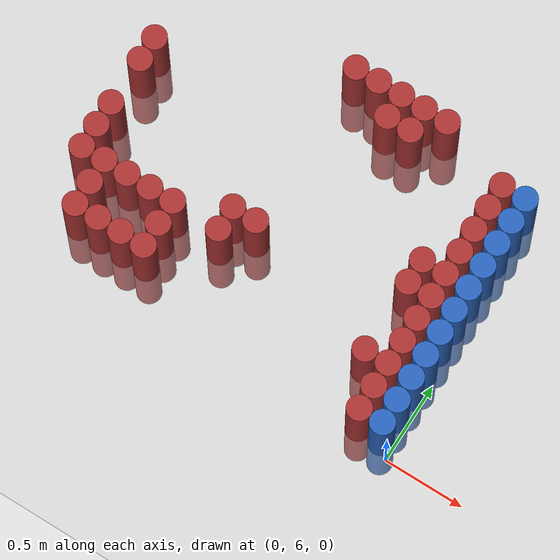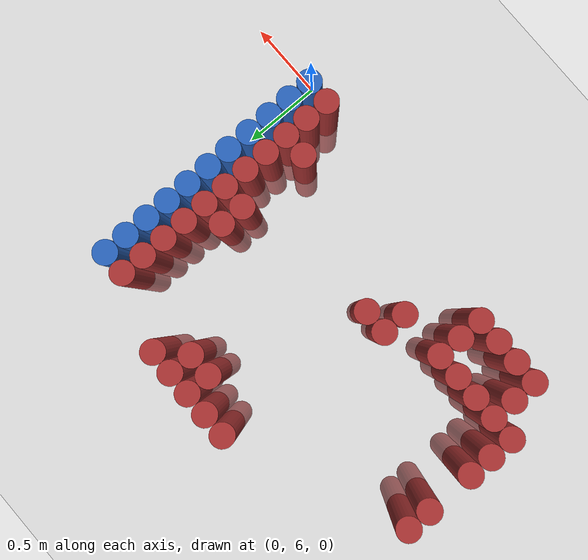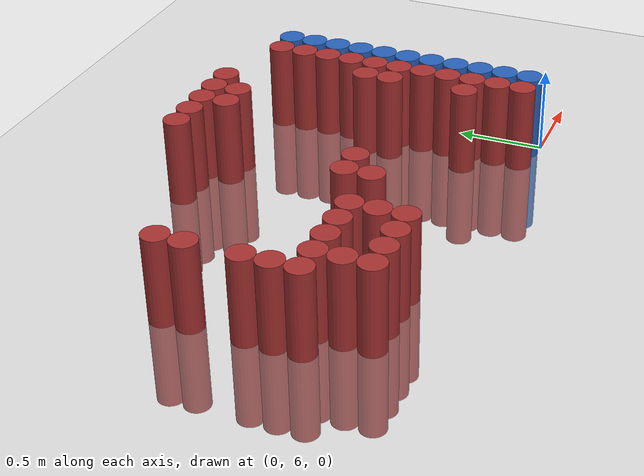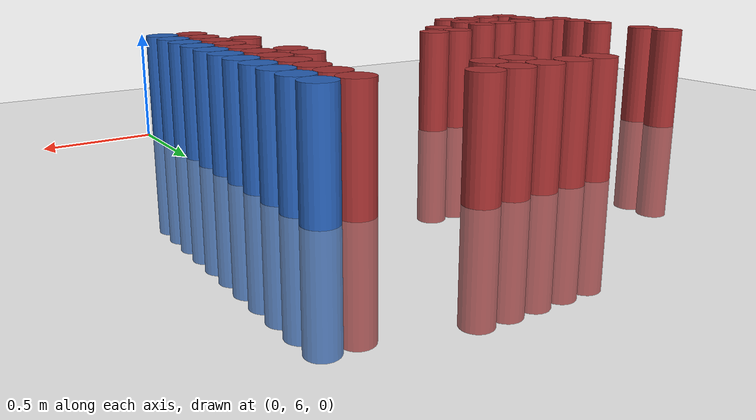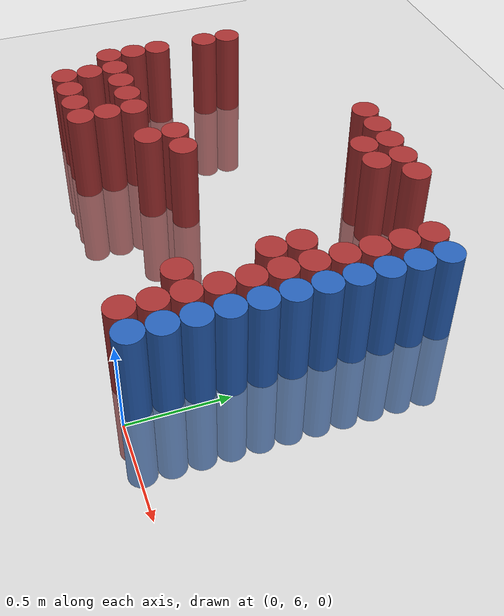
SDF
<sdf version="1.6">
 <world name="default">
  <model name="ground_plane">
   <static>1</static>
   <link name="link">
    <collision name="collision">
     <geometry><plane><normal>0 0 1</normal><size>100 100</size></plane></geometry>
     <surface><friction><ode><mu>100</mu><mu2>50</mu2></ode></friction></surface>
    </collision>
    <visual name="visual">
     <cast_shadows>0</cast_shadows>
     <geometry><plane><normal>0 0 1</normal><size>100 100</size></plane></geometry>
     <material>
      <script><uri>file://media/materials/scripts/gazebo.material</uri><name>Gazebo/Grey</name></script>
     </material>
    </visual>
   </link>
  </model>
  <model name="unit_cylinder_236">
   <static>1</static>
   <pose>-2.325000 6.525000 0.000000 0.000000 0.000000 0.000000</pose>
   <link name="link">
    <inertial>
     <mass>1</mass>
     <inertia><ixx>0.145833</ixx><ixy>0</ixy><ixz>0</ixz><iyy>0.145833</iyy><iyz>0</iyz><izz>0.125</izz></inertia>
    </inertial>
    <collision name="collision">
     <geometry><cylinder><radius>0.075000</radius><length>1</length></cylinder></geometry>
    </collision>
    <visual name="visual">
     <geometry><cylinder><radius>0.075000</radius><length>1</length></cylinder></geometry>
     <material>
      <ambient>0.648000 0.192000 0.192000 1</ambient>
      <diffuse>0.648000 0.192000 0.192000 1</diffuse>
     </material>
     <material>
      <script><name>Gazebo/Grey</name><uri>file://media/materials/scripts/gazebo.material</uri></script>
     </material>
    </visual>
   </link>
  </model>
  <model name="unit_cylinder_237">
   <static>1</static>
   <pose>-2.325000 6.675000 0.000000 0.000000 0.000000 0.000000</pose>
   <link name="link">
    <inertial>
     <mass>1</mass>
     <inertia><ixx>0.145833</ixx><ixy>0</ixy><ixz>0</ixz><iyy>0.145833</iyy><iyz>0</iyz><izz>0.125</izz></inertia>
    </inertial>
    <collision name="collision">
     <geometry><cylinder><radius>0.075000</radius><length>1</length></cylinder></geometry>
    </collision>
    <visual name="visual">
     <geometry><cylinder><radius>0.075000</radius><length>1</length></cylinder></geometry>
     <material>
      <ambient>0.648000 0.192000 0.192000 1</ambient>
      <diffuse>0.648000 0.192000 0.192000 1</diffuse>
     </material>
     <material>
      <script><name>Gazebo/Grey</name><uri>file://media/materials/scripts/gazebo.material</uri></script>
     </material>
    </visual>
   </link>
  </model>
  <model name="unit_cylinder_238">
   <static>1</static>
   <pose>-2.325000 6.825000 0.000000 0.000000 0.000000 0.000000</pose>
   <link name="link">
    <inertial>
     <mass>1</mass>
     <inertia><ixx>0.145833</ixx><ixy>0</ixy><ixz>0</ixz><iyy>0.145833</iyy><iyz>0</iyz><izz>0.125</izz></inertia>
    </inertial>
    <collision name="collision">
     <geometry><cylinder><radius>0.075000</radius><length>1</length></cylinder></geometry>
    </collision>
    <visual name="visual">
     <geometry><cylinder><radius>0.075000</radius><length>1</length></cylinder></geometry>
     <material>
      <ambient>0.648000 0.192000 0.192000 1</ambient>
      <diffuse>0.648000 0.192000 0.192000 1</diffuse>
     </material>
     <material>
      <script><name>Gazebo/Grey</name><uri>file://media/materials/scripts/gazebo.material</uri></script>
     </material>
    </visual>
   </link>
  </model>
  <model name="unit_cylinder_239">
   <static>1</static>
   <pose>-2.325000 7.125000 0.000000 0.000000 0.000000 0.000000</pose>
   <link name="link">
    <inertial>
     <mass>1</mass>
     <inertia><ixx>0.145833</ixx><ixy>0</ixy><ixz>0</ixz><iyy>0.145833</iyy><iyz>0</iyz><izz>0.125</izz></inertia>
    </inertial>
    <collision name="collision">
     <geometry><cylinder><radius>0.075000</radius><length>1</length></cylinder></geometry>
    </collision>
    <visual name="visual">
     <geometry><cylinder><radius>0.075000</radius><length>1</length></cylinder></geometry>
     <material>
      <ambient>0.648000 0.192000 0.192000 1</ambient>
      <diffuse>0.648000 0.192000 0.192000 1</diffuse>
     </material>
     <material>
      <script><name>Gazebo/Grey</name><uri>file://media/materials/scripts/gazebo.material</uri></script>
     </material>
    </visual>
   </link>
  </model>
  <model name="unit_cylinder_240">
   <static>1</static>
   <pose>-2.325000 7.275000 0.000000 0.000000 0.000000 0.000000</pose>
   <link name="link">
    <inertial>
     <mass>1</mass>
     <inertia><ixx>0.145833</ixx><ixy>0</ixy><ixz>0</ixz><iyy>0.145833</iyy><iyz>0</iyz><izz>0.125</izz></inertia>
    </inertial>
    <collision name="collision">
     <geometry><cylinder><radius>0.075000</radius><length>1</length></cylinder></geometry>
    </collision>
    <visual name="visual">
     <geometry><cylinder><radius>0.075000</radius><length>1</length></cylinder></geometry>
     <material>
      <ambient>0.648000 0.192000 0.192000 1</ambient>
      <diffuse>0.648000 0.192000 0.192000 1</diffuse>
     </material>
     <material>
      <script><name>Gazebo/Grey</name><uri>file://media/materials/scripts/gazebo.material</uri></script>
     </material>
    </visual>
   </link>
  </model>
  <model name="unit_cylinder_247">
   <static>1</static>
   <pose>-2.175000 6.225000 0.000000 0.000000 0.000000 0.000000</pose>
   <link name="link">
    <inertial>
     <mass>1</mass>
     <inertia><ixx>0.145833</ixx><ixy>0</ixy><ixz>0</ixz><iyy>0.145833</iyy><iyz>0</iyz><izz>0.125</izz></inertia>
    </inertial>
    <collision name="collision">
     <geometry><cylinder><radius>0.075000</radius><length>1</length></cylinder></geometry>
    </collision>
    <visual name="visual">
     <geometry><cylinder><radius>0.075000</radius><length>1</length></cylinder></geometry>
     <material>
      <ambient>0.648000 0.192000 0.192000 1</ambient>
      <diffuse>0.648000 0.192000 0.192000 1</diffuse>
     </material>
     <material>
      <script><name>Gazebo/Grey</name><uri>file://media/materials/scripts/gazebo.material</uri></script>
     </material>
    </visual>
   </link>
  </model>
  <model name="unit_cylinder_248">
   <static>1</static>
   <pose>-2.175000 6.375000 0.000000 0.000000 0.000000 0.000000</pose>
   <link name="link">
    <inertial>
     <mass>1</mass>
     <inertia><ixx>0.145833</ixx><ixy>0</ixy><ixz>0</ixz><iyy>0.145833</iyy><iyz>0</iyz><izz>0.125</izz></inertia>
    </inertial>
    <collision name="collision">
     <geometry><cylinder><radius>0.075000</radius><length>1</length></cylinder></geometry>
    </collision>
    <visual name="visual">
     <geometry><cylinder><radius>0.075000</radius><length>1</length></cylinder></geometry>
     <material>
      <ambient>0.648000 0.192000 0.192000 1</ambient>
      <diffuse>0.648000 0.192000 0.192000 1</diffuse>
     </material>
     <material>
      <script><name>Gazebo/Grey</name><uri>file://media/materials/scripts/gazebo.material</uri></script>
     </material>
    </visual>
   </link>
  </model>
  <model name="unit_cylinder_249">
   <static>1</static>
   <pose>-2.175000 6.525000 0.000000 0.000000 0.000000 0.000000</pose>
   <link name="link">
    <inertial>
     <mass>1</mass>
     <inertia><ixx>0.145833</ixx><ixy>0</ixy><ixz>0</ixz><iyy>0.145833</iyy><iyz>0</iyz><izz>0.125</izz></inertia>
    </inertial>
    <collision name="collision">
     <geometry><cylinder><radius>0.075000</radius><length>1</length></cylinder></geometry>
    </collision>
    <visual name="visual">
     <geometry><cylinder><radius>0.075000</radius><length>1</length></cylinder></geometry>
     <material>
      <ambient>0.648000 0.192000 0.192000 1</ambient>
      <diffuse>0.648000 0.192000 0.192000 1</diffuse>
     </material>
     <material>
      <script><name>Gazebo/Grey</name><uri>file://media/materials/scripts/gazebo.material</uri></script>
     </material>
    </visual>
   </link>
  </model>
  <model name="unit_cylinder_256">
   <static>1</static>
   <pose>-2.025000 6.225000 0.000000 0.000000 0.000000 0.000000</pose>
   <link name="link">
    <inertial>
     <mass>1</mass>
     <inertia><ixx>0.145833</ixx><ixy>0</ixy><ixz>0</ixz><iyy>0.145833</iyy><iyz>0</iyz><izz>0.125</izz></inertia>
    </inertial>
    <collision name="collision">
     <geometry><cylinder><radius>0.075000</radius><length>1</length></cylinder></geometry>
    </collision>
    <visual name="visual">
     <geometry><cylinder><radius>0.075000</radius><length>1</length></cylinder></geometry>
     <material>
      <ambient>0.648000 0.192000 0.192000 1</ambient>
      <diffuse>0.648000 0.192000 0.192000 1</diffuse>
     </material>
     <material>
      <script><name>Gazebo/Grey</name><uri>file://media/materials/scripts/gazebo.material</uri></script>
     </material>
    </visual>
   </link>
  </model>
  <model name="unit_cylinder_257">
   <static>1</static>
   <pose>-2.025000 6.525000 0.000000 0.000000 0.000000 0.000000</pose>
   <link name="link">
    <inertial>
     <mass>1</mass>
     <inertia><ixx>0.145833</ixx><ixy>0</ixy><ixz>0</ixz><iyy>0.145833</iyy><iyz>0</iyz><izz>0.125</izz></inertia>
    </inertial>
    <collision name="collision">
     <geometry><cylinder><radius>0.075000</radius><length>1</length></cylinder></geometry>
    </collision>
    <visual name="visual">
     <geometry><cylinder><radius>0.075000</radius><length>1</length></cylinder></geometry>
     <material>
      <ambient>0.648000 0.192000 0.192000 1</ambient>
      <diffuse>0.648000 0.192000 0.192000 1</diffuse>
     </material>
     <material>
      <script><name>Gazebo/Grey</name><uri>file://media/materials/scripts/gazebo.material</uri></script>
     </material>
    </visual>
   </link>
  </model>
  <model name="unit_cylinder_258">
   <static>1</static>
   <pose>-1.875000 6.225000 0.000000 0.000000 0.000000 0.000000</pose>
   <link name="link">
    <inertial>
     <mass>1</mass>
     <inertia><ixx>0.145833</ixx><ixy>0</ixy><ixz>0</ixz><iyy>0.145833</iyy><iyz>0</iyz><izz>0.125</izz></inertia>
    </inertial>
    <collision name="collision">
     <geometry><cylinder><radius>0.075000</radius><length>1</length></cylinder></geometry>
    </collision>
    <visual name="visual">
     <geometry><cylinder><radius>0.075000</radius><length>1</length></cylinder></geometry>
     <material>
      <ambient>0.648000 0.192000 0.192000 1</ambient>
      <diffuse>0.648000 0.192000 0.192000 1</diffuse>
     </material>
     <material>
      <script><name>Gazebo/Grey</name><uri>file://media/materials/scripts/gazebo.material</uri></script>
     </material>
    </visual>
   </link>
  </model>
  <model name="unit_cylinder_259">
   <static>1</static>
   <pose>-1.875000 6.525000 0.000000 0.000000 0.000000 0.000000</pose>
   <link name="link">
    <inertial>
     <mass>1</mass>
     <inertia><ixx>0.145833</ixx><ixy>0</ixy><ixz>0</ixz><iyy>0.145833</iyy><iyz>0</iyz><izz>0.125</izz></inertia>
    </inertial>
    <collision name="collision">
     <geometry><cylinder><radius>0.075000</radius><length>1</length></cylinder></geometry>
    </collision>
    <visual name="visual">
     <geometry><cylinder><radius>0.075000</radius><length>1</length></cylinder></geometry>
     <material>
      <ambient>0.648000 0.192000 0.192000 1</ambient>
      <diffuse>0.648000 0.192000 0.192000 1</diffuse>
     </material>
     <material>
      <script><name>Gazebo/Grey</name><uri>file://media/materials/scripts/gazebo.material</uri></script>
     </material>
    </visual>
   </link>
  </model>
  <model name="unit_cylinder_260">
   <static>1</static>
   <pose>-1.725000 6.225000 0.000000 0.000000 0.000000 0.000000</pose>
   <link name="link">
    <inertial>
     <mass>1</mass>
     <inertia><ixx>0.145833</ixx><ixy>0</ixy><ixz>0</ixz><iyy>0.145833</iyy><iyz>0</iyz><izz>0.125</izz></inertia>
    </inertial>
    <collision name="collision">
     <geometry><cylinder><radius>0.075000</radius><length>1</length></cylinder></geometry>
    </collision>
    <visual name="visual">
     <geometry><cylinder><radius>0.075000</radius><length>1</length></cylinder></geometry>
     <material>
      <ambient>0.648000 0.192000 0.192000 1</ambient>
      <diffuse>0.648000 0.192000 0.192000 1</diffuse>
     </material>
     <material>
      <script><name>Gazebo/Grey</name><uri>file://media/materials/scripts/gazebo.material</uri></script>
     </material>
    </visual>
   </link>
  </model>
  <model name="unit_cylinder_261">
   <static>1</static>
   <pose>-1.725000 6.375000 0.000000 0.000000 0.000000 0.000000</pose>
   <link name="link">
    <inertial>
     <mass>1</mass>
     <inertia><ixx>0.145833</ixx><ixy>0</ixy><ixz>0</ixz><iyy>0.145833</iyy><iyz>0</iyz><izz>0.125</izz></inertia>
    </inertial>
    <collision name="collision">
     <geometry><cylinder><radius>0.075000</radius><length>1</length></cylinder></geometry>
    </collision>
    <visual name="visual">
     <geometry><cylinder><radius>0.075000</radius><length>1</length></cylinder></geometry>
     <material>
      <ambient>0.648000 0.192000 0.192000 1</ambient>
      <diffuse>0.648000 0.192000 0.192000 1</diffuse>
     </material>
     <material>
      <script><name>Gazebo/Grey</name><uri>file://media/materials/scripts/gazebo.material</uri></script>
     </material>
    </visual>
   </link>
  </model>
  <model name="unit_cylinder_262">
   <static>1</static>
   <pose>-1.725000 6.525000 0.000000 0.000000 0.000000 0.000000</pose>
   <link name="link">
    <inertial>
     <mass>1</mass>
     <inertia><ixx>0.145833</ixx><ixy>0</ixy><ixz>0</ixz><iyy>0.145833</iyy><iyz>0</iyz><izz>0.125</izz></inertia>
    </inertial>
    <collision name="collision">
     <geometry><cylinder><radius>0.075000</radius><length>1</length></cylinder></geometry>
    </collision>
    <visual name="visual">
     <geometry><cylinder><radius>0.075000</radius><length>1</length></cylinder></geometry>
     <material>
      <ambient>0.648000 0.192000 0.192000 1</ambient>
      <diffuse>0.648000 0.192000 0.192000 1</diffuse>
     </material>
     <material>
      <script><name>Gazebo/Grey</name><uri>file://media/materials/scripts/gazebo.material</uri></script>
     </material>
    </visual>
   </link>
  </model>
  <model name="unit_cylinder_263">
   <static>1</static>
   <pose>-1.425000 6.525000 0.000000 0.000000 0.000000 0.000000</pose>
   <link name="link">
    <inertial>
     <mass>1</mass>
     <inertia><ixx>0.145833</ixx><ixy>0</ixy><ixz>0</ixz><iyy>0.145833</iyy><iyz>0</iyz><izz>0.125</izz></inertia>
    </inertial>
    <collision name="collision">
     <geometry><cylinder><radius>0.075000</radius><length>1</length></cylinder></geometry>
    </collision>
    <visual name="visual">
     <geometry><cylinder><radius>0.075000</radius><length>1</length></cylinder></geometry>
     <material>
      <ambient>0.648000 0.192000 0.192000 1</ambient>
      <diffuse>0.648000 0.192000 0.192000 1</diffuse>
     </material>
     <material>
      <script><name>Gazebo/Grey</name><uri>file://media/materials/scripts/gazebo.material</uri></script>
     </material>
    </visual>
   </link>
  </model>
  <model name="unit_cylinder_264">
   <static>1</static>
   <pose>-1.425000 6.675000 0.000000 0.000000 0.000000 0.000000</pose>
   <link name="link">
    <inertial>
     <mass>1</mass>
     <inertia><ixx>0.145833</ixx><ixy>0</ixy><ixz>0</ixz><iyy>0.145833</iyy><iyz>0</iyz><izz>0.125</izz></inertia>
    </inertial>
    <collision name="collision">
     <geometry><cylinder><radius>0.075000</radius><length>1</length></cylinder></geometry>
    </collision>
    <visual name="visual">
     <geometry><cylinder><radius>0.075000</radius><length>1</length></cylinder></geometry>
     <material>
      <ambient>0.648000 0.192000 0.192000 1</ambient>
      <diffuse>0.648000 0.192000 0.192000 1</diffuse>
     </material>
     <material>
      <script><name>Gazebo/Grey</name><uri>file://media/materials/scripts/gazebo.material</uri></script>
     </material>
    </visual>
   </link>
  </model>
  <model name="unit_cylinder_265">
   <static>1</static>
   <pose>-1.275000 6.675000 0.000000 0.000000 0.000000 0.000000</pose>
   <link name="link">
    <inertial>
     <mass>1</mass>
     <inertia><ixx>0.145833</ixx><ixy>0</ixy><ixz>0</ixz><iyy>0.145833</iyy><iyz>0</iyz><izz>0.125</izz></inertia>
    </inertial>
    <collision name="collision">
     <geometry><cylinder><radius>0.075000</radius><length>1</length></cylinder></geometry>
    </collision>
    <visual name="visual">
     <geometry><cylinder><radius>0.075000</radius><length>1</length></cylinder></geometry>
     <material>
      <ambient>0.648000 0.192000 0.192000 1</ambient>
      <diffuse>0.648000 0.192000 0.192000 1</diffuse>
     </material>
     <material>
      <script><name>Gazebo/Grey</name><uri>file://media/materials/scripts/gazebo.material</uri></script>
     </material>
    </visual>
   </link>
  </model>
  <model name="unit_cylinder_266">
   <static>1</static>
   <pose>-1.275000 7.725000 0.000000 0.000000 0.000000 0.000000</pose>
   <link name="link">
    <inertial>
     <mass>1</mass>
     <inertia><ixx>0.145833</ixx><ixy>0</ixy><ixz>0</ixz><iyy>0.145833</iyy><iyz>0</iyz><izz>0.125</izz></inertia>
    </inertial>
    <collision name="collision">
     <geometry><cylinder><radius>0.075000</radius><length>1</length></cylinder></geometry>
    </collision>
    <visual name="visual">
     <geometry><cylinder><radius>0.075000</radius><length>1</length></cylinder></geometry>
     <material>
      <ambient>0.648000 0.192000 0.192000 1</ambient>
      <diffuse>0.648000 0.192000 0.192000 1</diffuse>
     </material>
     <material>
      <script><name>Gazebo/Grey</name><uri>file://media/materials/scripts/gazebo.material</uri></script>
     </material>
    </visual>
   </link>
  </model>
  <model name="unit_cylinder_270">
   <static>1</static>
   <pose>-1.125000 7.725000 0.000000 0.000000 0.000000 0.000000</pose>
   <link name="link">
    <inertial>
     <mass>1</mass>
     <inertia><ixx>0.145833</ixx><ixy>0</ixy><ixz>0</ixz><iyy>0.145833</iyy><iyz>0</iyz><izz>0.125</izz></inertia>
    </inertial>
    <collision name="collision">
     <geometry><cylinder><radius>0.075000</radius><length>1</length></cylinder></geometry>
    </collision>
    <visual name="visual">
     <geometry><cylinder><radius>0.075000</radius><length>1</length></cylinder></geometry>
     <material>
      <ambient>0.648000 0.192000 0.192000 1</ambient>
      <diffuse>0.648000 0.192000 0.192000 1</diffuse>
     </material>
     <material>
      <script><name>Gazebo/Grey</name><uri>file://media/materials/scripts/gazebo.material</uri></script>
     </material>
    </visual>
   </link>
  </model>
  <model name="unit_cylinder_272">
   <static>1</static>
   <pose>-0.975000 7.575000 0.000000 0.000000 0.000000 0.000000</pose>
   <link name="link">
    <inertial>
     <mass>1</mass>
     <inertia><ixx>0.145833</ixx><ixy>0</ixy><ixz>0</ixz><iyy>0.145833</iyy><iyz>0</iyz><izz>0.125</izz></inertia>
    </inertial>
    <collision name="collision">
     <geometry><cylinder><radius>0.075000</radius><length>1</length></cylinder></geometry>
    </collision>
    <visual name="visual">
     <geometry><cylinder><radius>0.075000</radius><length>1</length></cylinder></geometry>
     <material>
      <ambient>0.648000 0.192000 0.192000 1</ambient>
      <diffuse>0.648000 0.192000 0.192000 1</diffuse>
     </material>
     <material>
      <script><name>Gazebo/Grey</name><uri>file://media/materials/scripts/gazebo.material</uri></script>
     </material>
    </visual>
   </link>
  </model>
  <model name="unit_cylinder_273">
   <static>1</static>
   <pose>-0.975000 7.725000 0.000000 0.000000 0.000000 0.000000</pose>
   <link name="link">
    <inertial>
     <mass>1</mass>
     <inertia><ixx>0.145833</ixx><ixy>0</ixy><ixz>0</ixz><iyy>0.145833</iyy><iyz>0</iyz><izz>0.125</izz></inertia>
    </inertial>
    <collision name="collision">
     <geometry><cylinder><radius>0.075000</radius><length>1</length></cylinder></geometry>
    </collision>
    <visual name="visual">
     <geometry><cylinder><radius>0.075000</radius><length>1</length></cylinder></geometry>
     <material>
      <ambient>0.648000 0.192000 0.192000 1</ambient>
      <diffuse>0.648000 0.192000 0.192000 1</diffuse>
     </material>
     <material>
      <script><name>Gazebo/Grey</name><uri>file://media/materials/scripts/gazebo.material</uri></script>
     </material>
    </visual>
   </link>
  </model>
  <model name="unit_cylinder_275">
   <static>1</static>
   <pose>-0.825000 7.575000 0.000000 0.000000 0.000000 0.000000</pose>
   <link name="link">
    <inertial>
     <mass>1</mass>
     <inertia><ixx>0.145833</ixx><ixy>0</ixy><ixz>0</ixz><iyy>0.145833</iyy><iyz>0</iyz><izz>0.125</izz></inertia>
    </inertial>
    <collision name="collision">
     <geometry><cylinder><radius>0.075000</radius><length>1</length></cylinder></geometry>
    </collision>
    <visual name="visual">
     <geometry><cylinder><radius>0.075000</radius><length>1</length></cylinder></geometry>
     <material>
      <ambient>0.648000 0.192000 0.192000 1</ambient>
      <diffuse>0.648000 0.192000 0.192000 1</diffuse>
     </material>
     <material>
      <script><name>Gazebo/Grey</name><uri>file://media/materials/scripts/gazebo.material</uri></script>
     </material>
    </visual>
   </link>
  </model>
  <model name="unit_cylinder_276">
   <static>1</static>
   <pose>-0.825000 7.725000 0.000000 0.000000 0.000000 0.000000</pose>
   <link name="link">
    <inertial>
     <mass>1</mass>
     <inertia><ixx>0.145833</ixx><ixy>0</ixy><ixz>0</ixz><iyy>0.145833</iyy><iyz>0</iyz><izz>0.125</izz></inertia>
    </inertial>
    <collision name="collision">
     <geometry><cylinder><radius>0.075000</radius><length>1</length></cylinder></geometry>
    </collision>
    <visual name="visual">
     <geometry><cylinder><radius>0.075000</radius><length>1</length></cylinder></geometry>
     <material>
      <ambient>0.648000 0.192000 0.192000 1</ambient>
      <diffuse>0.648000 0.192000 0.192000 1</diffuse>
     </material>
     <material>
      <script><name>Gazebo/Grey</name><uri>file://media/materials/scripts/gazebo.material</uri></script>
     </material>
    </visual>
   </link>
  </model>
  <model name="unit_cylinder_279">
   <static>1</static>
   <pose>-0.675000 7.725000 0.000000 0.000000 0.000000 0.000000</pose>
   <link name="link">
    <inertial>
     <mass>1</mass>
     <inertia><ixx>0.145833</ixx><ixy>0</ixy><ixz>0</ixz><iyy>0.145833</iyy><iyz>0</iyz><izz>0.125</izz></inertia>
    </inertial>
    <collision name="collision">
     <geometry><cylinder><radius>0.075000</radius><length>1</length></cylinder></geometry>
    </collision>
    <visual name="visual">
     <geometry><cylinder><radius>0.075000</radius><length>1</length></cylinder></geometry>
     <material>
      <ambient>0.648000 0.192000 0.192000 1</ambient>
      <diffuse>0.648000 0.192000 0.192000 1</diffuse>
     </material>
     <material>
      <script><name>Gazebo/Grey</name><uri>file://media/materials/scripts/gazebo.material</uri></script>
     </material>
    </visual>
   </link>
  </model>
  <model name="unit_cylinder_286">
   <static>1</static>
   <pose>-0.375000 6.375000 0.000000 0.000000 0.000000 0.000000</pose>
   <link name="link">
    <inertial>
     <mass>1</mass>
     <inertia><ixx>0.145833</ixx><ixy>0</ixy><ixz>0</ixz><iyy>0.145833</iyy><iyz>0</iyz><izz>0.125</izz></inertia>
    </inertial>
    <collision name="collision">
     <geometry><cylinder><radius>0.075000</radius><length>1</length></cylinder></geometry>
    </collision>
    <visual name="visual">
     <geometry><cylinder><radius>0.075000</radius><length>1</length></cylinder></geometry>
     <material>
      <ambient>0.648000 0.192000 0.192000 1</ambient>
      <diffuse>0.648000 0.192000 0.192000 1</diffuse>
     </material>
     <material>
      <script><name>Gazebo/Grey</name><uri>file://media/materials/scripts/gazebo.material</uri></script>
     </material>
    </visual>
   </link>
  </model>
  <model name="unit_cylinder_287">
   <static>1</static>
   <pose>-0.375000 6.825000 0.000000 0.000000 0.000000 0.000000</pose>
   <link name="link">
    <inertial>
     <mass>1</mass>
     <inertia><ixx>0.145833</ixx><ixy>0</ixy><ixz>0</ixz><iyy>0.145833</iyy><iyz>0</iyz><izz>0.125</izz></inertia>
    </inertial>
    <collision name="collision">
     <geometry><cylinder><radius>0.075000</radius><length>1</length></cylinder></geometry>
    </collision>
    <visual name="visual">
     <geometry><cylinder><radius>0.075000</radius><length>1</length></cylinder></geometry>
     <material>
      <ambient>0.648000 0.192000 0.192000 1</ambient>
      <diffuse>0.648000 0.192000 0.192000 1</diffuse>
     </material>
     <material>
      <script><name>Gazebo/Grey</name><uri>file://media/materials/scripts/gazebo.material</uri></script>
     </material>
    </visual>
   </link>
  </model>
  <model name="unit_cylinder_288">
   <static>1</static>
   <pose>-0.375000 6.975000 0.000000 0.000000 0.000000 0.000000</pose>
   <link name="link">
    <inertial>
     <mass>1</mass>
     <inertia><ixx>0.145833</ixx><ixy>0</ixy><ixz>0</ixz><iyy>0.145833</iyy><iyz>0</iyz><izz>0.125</izz></inertia>
    </inertial>
    <collision name="collision">
     <geometry><cylinder><radius>0.075000</radius><length>1</length></cylinder></geometry>
    </collision>
    <visual name="visual">
     <geometry><cylinder><radius>0.075000</radius><length>1</length></cylinder></geometry>
     <material>
      <ambient>0.648000 0.192000 0.192000 1</ambient>
      <diffuse>0.648000 0.192000 0.192000 1</diffuse>
     </material>
     <material>
      <script><name>Gazebo/Grey</name><uri>file://media/materials/scripts/gazebo.material</uri></script>
     </material>
    </visual>
   </link>
  </model>
  <model name="unit_cylinder_298">
   <static>1</static>
   <pose>-0.225000 6.075000 0.000000 0.000000 0.000000 0.000000</pose>
   <link name="link">
    <inertial>
     <mass>1</mass>
     <inertia><ixx>0.145833</ixx><ixy>0</ixy><ixz>0</ixz><iyy>0.145833</iyy><iyz>0</iyz><izz>0.125</izz></inertia>
    </inertial>
    <collision name="collision">
     <geometry><cylinder><radius>0.075000</radius><length>1</length></cylinder></geometry>
    </collision>
    <visual name="visual">
     <geometry><cylinder><radius>0.075000</radius><length>1</length></cylinder></geometry>
     <material>
      <ambient>0.648000 0.192000 0.192000 1</ambient>
      <diffuse>0.648000 0.192000 0.192000 1</diffuse>
     </material>
     <material>
      <script><name>Gazebo/Grey</name><uri>file://media/materials/scripts/gazebo.material</uri></script>
     </material>
    </visual>
   </link>
  </model>
  <model name="unit_cylinder_299">
   <static>1</static>
   <pose>-0.225000 6.225000 0.000000 0.000000 0.000000 0.000000</pose>
   <link name="link">
    <inertial>
     <mass>1</mass>
     <inertia><ixx>0.145833</ixx><ixy>0</ixy><ixz>0</ixz><iyy>0.145833</iyy><iyz>0</iyz><izz>0.125</izz></inertia>
    </inertial>
    <collision name="collision">
     <geometry><cylinder><radius>0.075000</radius><length>1</length></cylinder></geometry>
    </collision>
    <visual name="visual">
     <geometry><cylinder><radius>0.075000</radius><length>1</length></cylinder></geometry>
     <material>
      <ambient>0.648000 0.192000 0.192000 1</ambient>
      <diffuse>0.648000 0.192000 0.192000 1</diffuse>
     </material>
     <material>
      <script><name>Gazebo/Grey</name><uri>file://media/materials/scripts/gazebo.material</uri></script>
     </material>
    </visual>
   </link>
  </model>
  <model name="unit_cylinder_300">
   <static>1</static>
   <pose>-0.225000 6.375000 0.000000 0.000000 0.000000 0.000000</pose>
   <link name="link">
    <inertial>
     <mass>1</mass>
     <inertia><ixx>0.145833</ixx><ixy>0</ixy><ixz>0</ixz><iyy>0.145833</iyy><iyz>0</iyz><izz>0.125</izz></inertia>
    </inertial>
    <collision name="collision">
     <geometry><cylinder><radius>0.075000</radius><length>1</length></cylinder></geometry>
    </collision>
    <visual name="visual">
     <geometry><cylinder><radius>0.075000</radius><length>1</length></cylinder></geometry>
     <material>
      <ambient>0.648000 0.192000 0.192000 1</ambient>
      <diffuse>0.648000 0.192000 0.192000 1</diffuse>
     </material>
     <material>
      <script><name>Gazebo/Grey</name><uri>file://media/materials/scripts/gazebo.material</uri></script>
     </material>
    </visual>
   </link>
  </model>
  <model name="unit_cylinder_301">
   <static>1</static>
   <pose>-0.225000 6.525000 0.000000 0.000000 0.000000 0.000000</pose>
   <link name="link">
    <inertial>
     <mass>1</mass>
     <inertia><ixx>0.145833</ixx><ixy>0</ixy><ixz>0</ixz><iyy>0.145833</iyy><iyz>0</iyz><izz>0.125</izz></inertia>
    </inertial>
    <collision name="collision">
     <geometry><cylinder><radius>0.075000</radius><length>1</length></cylinder></geometry>
    </collision>
    <visual name="visual">
     <geometry><cylinder><radius>0.075000</radius><length>1</length></cylinder></geometry>
     <material>
      <ambient>0.648000 0.192000 0.192000 1</ambient>
      <diffuse>0.648000 0.192000 0.192000 1</diffuse>
     </material>
     <material>
      <script><name>Gazebo/Grey</name><uri>file://media/materials/scripts/gazebo.material</uri></script>
     </material>
    </visual>
   </link>
  </model>
  <model name="unit_cylinder_302">
   <static>1</static>
   <pose>-0.225000 6.675000 0.000000 0.000000 0.000000 0.000000</pose>
   <link name="link">
    <inertial>
     <mass>1</mass>
     <inertia><ixx>0.145833</ixx><ixy>0</ixy><ixz>0</ixz><iyy>0.145833</iyy><iyz>0</iyz><izz>0.125</izz></inertia>
    </inertial>
    <collision name="collision">
     <geometry><cylinder><radius>0.075000</radius><length>1</length></cylinder></geometry>
    </collision>
    <visual name="visual">
     <geometry><cylinder><radius>0.075000</radius><length>1</length></cylinder></geometry>
     <material>
      <ambient>0.648000 0.192000 0.192000 1</ambient>
      <diffuse>0.648000 0.192000 0.192000 1</diffuse>
     </material>
     <material>
      <script><name>Gazebo/Grey</name><uri>file://media/materials/scripts/gazebo.material</uri></script>
     </material>
    </visual>
   </link>
  </model>
  <model name="unit_cylinder_303">
   <static>1</static>
   <pose>-0.225000 6.825000 0.000000 0.000000 0.000000 0.000000</pose>
   <link name="link">
    <inertial>
     <mass>1</mass>
     <inertia><ixx>0.145833</ixx><ixy>0</ixy><ixz>0</ixz><iyy>0.145833</iyy><iyz>0</iyz><izz>0.125</izz></inertia>
    </inertial>
    <collision name="collision">
     <geometry><cylinder><radius>0.075000</radius><length>1</length></cylinder></geometry>
    </collision>
    <visual name="visual">
     <geometry><cylinder><radius>0.075000</radius><length>1</length></cylinder></geometry>
     <material>
      <ambient>0.648000 0.192000 0.192000 1</ambient>
      <diffuse>0.648000 0.192000 0.192000 1</diffuse>
     </material>
     <material>
      <script><name>Gazebo/Grey</name><uri>file://media/materials/scripts/gazebo.material</uri></script>
     </material>
    </visual>
   </link>
  </model>
  <model name="unit_cylinder_304">
   <static>1</static>
   <pose>-0.225000 6.975000 0.000000 0.000000 0.000000 0.000000</pose>
   <link name="link">
    <inertial>
     <mass>1</mass>
     <inertia><ixx>0.145833</ixx><ixy>0</ixy><ixz>0</ixz><iyy>0.145833</iyy><iyz>0</iyz><izz>0.125</izz></inertia>
    </inertial>
    <collision name="collision">
     <geometry><cylinder><radius>0.075000</radius><length>1</length></cylinder></geometry>
    </collision>
    <visual name="visual">
     <geometry><cylinder><radius>0.075000</radius><length>1</length></cylinder></geometry>
     <material>
      <ambient>0.648000 0.192000 0.192000 1</ambient>
      <diffuse>0.648000 0.192000 0.192000 1</diffuse>
     </material>
     <material>
      <script><name>Gazebo/Grey</name><uri>file://media/materials/scripts/gazebo.material</uri></script>
     </material>
    </visual>
   </link>
  </model>
  <model name="unit_cylinder_305">
   <static>1</static>
   <pose>-0.225000 7.125000 0.000000 0.000000 0.000000 0.000000</pose>
   <link name="link">
    <inertial>
     <mass>1</mass>
     <inertia><ixx>0.145833</ixx><ixy>0</ixy><ixz>0</ixz><iyy>0.145833</iyy><iyz>0</iyz><izz>0.125</izz></inertia>
    </inertial>
    <collision name="collision">
     <geometry><cylinder><radius>0.075000</radius><length>1</length></cylinder></geometry>
    </collision>
    <visual name="visual">
     <geometry><cylinder><radius>0.075000</radius><length>1</length></cylinder></geometry>
     <material>
      <ambient>0.648000 0.192000 0.192000 1</ambient>
      <diffuse>0.648000 0.192000 0.192000 1</diffuse>
     </material>
     <material>
      <script><name>Gazebo/Grey</name><uri>file://media/materials/scripts/gazebo.material</uri></script>
     </material>
    </visual>
   </link>
  </model>
  <model name="unit_cylinder_306">
   <static>1</static>
   <pose>-0.225000 7.275000 0.000000 0.000000 0.000000 0.000000</pose>
   <link name="link">
    <inertial>
     <mass>1</mass>
     <inertia><ixx>0.145833</ixx><ixy>0</ixy><ixz>0</ixz><iyy>0.145833</iyy><iyz>0</iyz><izz>0.125</izz></inertia>
    </inertial>
    <collision name="collision">
     <geometry><cylinder><radius>0.075000</radius><length>1</length></cylinder></geometry>
    </collision>
    <visual name="visual">
     <geometry><cylinder><radius>0.075000</radius><length>1</length></cylinder></geometry>
     <material>
      <ambient>0.648000 0.192000 0.192000 1</ambient>
      <diffuse>0.648000 0.192000 0.192000 1</diffuse>
     </material>
     <material>
      <script><name>Gazebo/Grey</name><uri>file://media/materials/scripts/gazebo.material</uri></script>
     </material>
    </visual>
   </link>
  </model>
  <model name="unit_cylinder_307">
   <static>1</static>
   <pose>-0.225000 7.425000 0.000000 0.000000 0.000000 0.000000</pose>
   <link name="link">
    <inertial>
     <mass>1</mass>
     <inertia><ixx>0.145833</ixx><ixy>0</ixy><ixz>0</ixz><iyy>0.145833</iyy><iyz>0</iyz><izz>0.125</izz></inertia>
    </inertial>
    <collision name="collision">
     <geometry><cylinder><radius>0.075000</radius><length>1</length></cylinder></geometry>
    </collision>
    <visual name="visual">
     <geometry><cylinder><radius>0.075000</radius><length>1</length></cylinder></geometry>
     <material>
      <ambient>0.648000 0.192000 0.192000 1</ambient>
      <diffuse>0.648000 0.192000 0.192000 1</diffuse>
     </material>
     <material>
      <script><name>Gazebo/Grey</name><uri>file://media/materials/scripts/gazebo.material</uri></script>
     </material>
    </visual>
   </link>
  </model>
  <model name="unit_cylinder_308">
   <static>1</static>
   <pose>-0.225000 7.575000 0.000000 0.000000 0.000000 0.000000</pose>
   <link name="link">
    <inertial>
     <mass>1</mass>
     <inertia><ixx>0.145833</ixx><ixy>0</ixy><ixz>0</ixz><iyy>0.145833</iyy><iyz>0</iyz><izz>0.125</izz></inertia>
    </inertial>
    <collision name="collision">
     <geometry><cylinder><radius>0.075000</radius><length>1</length></cylinder></geometry>
    </collision>
    <visual name="visual">
     <geometry><cylinder><radius>0.075000</radius><length>1</length></cylinder></geometry>
     <material>
      <ambient>0.648000 0.192000 0.192000 1</ambient>
      <diffuse>0.648000 0.192000 0.192000 1</diffuse>
     </material>
     <material>
      <script><name>Gazebo/Grey</name><uri>file://media/materials/scripts/gazebo.material</uri></script>
     </material>
    </visual>
   </link>
  </model>
  <model name="unit_cylinder_326">
   <static>1</static>
   <pose>-0.075000 6.075000 0.000000 0.000000 0.000000 0.000000</pose>
   <link name="link">
    <inertial>
     <mass>1</mass>
     <inertia><ixx>0.145833</ixx><ixy>0</ixy><ixz>0</ixz><iyy>0.145833</iyy><iyz>0</iyz><izz>0.125</izz></inertia>
    </inertial>
    <collision name="collision">
     <geometry><cylinder><radius>0.075000</radius><length>1</length></cylinder></geometry>
    </collision>
    <visual name="visual">
     <geometry><cylinder><radius>0.075000</radius><length>1</length></cylinder></geometry>
     <material>
      <ambient>0.152000 0.379000 0.720000 1</ambient>
      <diffuse>0.152000 0.379000 0.720000 1</diffuse>
     </material>
     <material>
      <script><name>Gazebo/Grey</name><uri>file://media/materials/scripts/gazebo.material</uri></script>
     </material>
    </visual>
   </link>
  </model>
  <model name="unit_cylinder_327">
   <static>1</static>
   <pose>-0.075000 6.225000 0.000000 0.000000 0.000000 0.000000</pose>
   <link name="link">
    <inertial>
     <mass>1</mass>
     <inertia><ixx>0.145833</ixx><ixy>0</ixy><ixz>0</ixz><iyy>0.145833</iyy><iyz>0</iyz><izz>0.125</izz></inertia>
    </inertial>
    <collision name="collision">
     <geometry><cylinder><radius>0.075000</radius><length>1</length></cylinder></geometry>
    </collision>
    <visual name="visual">
     <geometry><cylinder><radius>0.075000</radius><length>1</length></cylinder></geometry>
     <material>
      <ambient>0.152000 0.379000 0.720000 1</ambient>
      <diffuse>0.152000 0.379000 0.720000 1</diffuse>
     </material>
     <material>
      <script><name>Gazebo/Grey</name><uri>file://media/materials/scripts/gazebo.material</uri></script>
     </material>
    </visual>
   </link>
  </model>
  <model name="unit_cylinder_328">
   <static>1</static>
   <pose>-0.075000 6.375000 0.000000 0.000000 0.000000 0.000000</pose>
   <link name="link">
    <inertial>
     <mass>1</mass>
     <inertia><ixx>0.145833</ixx><ixy>0</ixy><ixz>0</ixz><iyy>0.145833</iyy><iyz>0</iyz><izz>0.125</izz></inertia>
    </inertial>
    <collision name="collision">
     <geometry><cylinder><radius>0.075000</radius><length>1</length></cylinder></geometry>
    </collision>
    <visual name="visual">
     <geometry><cylinder><radius>0.075000</radius><length>1</length></cylinder></geometry>
     <material>
      <ambient>0.152000 0.379000 0.720000 1</ambient>
      <diffuse>0.152000 0.379000 0.720000 1</diffuse>
     </material>
     <material>
      <script><name>Gazebo/Grey</name><uri>file://media/materials/scripts/gazebo.material</uri></script>
     </material>
    </visual>
   </link>
  </model>
  <model name="unit_cylinder_329">
   <static>1</static>
   <pose>-0.075000 6.525000 0.000000 0.000000 0.000000 0.000000</pose>
   <link name="link">
    <inertial>
     <mass>1</mass>
     <inertia><ixx>0.145833</ixx><ixy>0</ixy><ixz>0</ixz><iyy>0.145833</iyy><iyz>0</iyz><izz>0.125</izz></inertia>
    </inertial>
    <collision name="collision">
     <geometry><cylinder><radius>0.075000</radius><length>1</length></cylinder></geometry>
    </collision>
    <visual name="visual">
     <geometry><cylinder><radius>0.075000</radius><length>1</length></cylinder></geometry>
     <material>
      <ambient>0.152000 0.379000 0.720000 1</ambient>
      <diffuse>0.152000 0.379000 0.720000 1</diffuse>
     </material>
     <material>
      <script><name>Gazebo/Grey</name><uri>file://media/materials/scripts/gazebo.material</uri></script>
     </material>
    </visual>
   </link>
  </model>
  <model name="unit_cylinder_330">
   <static>1</static>
   <pose>-0.075000 6.675000 0.000000 0.000000 0.000000 0.000000</pose>
   <link name="link">
    <inertial>
     <mass>1</mass>
     <inertia><ixx>0.145833</ixx><ixy>0</ixy><ixz>0</ixz><iyy>0.145833</iyy><iyz>0</iyz><izz>0.125</izz></inertia>
    </inertial>
    <collision name="collision">
     <geometry><cylinder><radius>0.075000</radius><length>1</length></cylinder></geometry>
    </collision>
    <visual name="visual">
     <geometry><cylinder><radius>0.075000</radius><length>1</length></cylinder></geometry>
     <material>
      <ambient>0.152000 0.379000 0.720000 1</ambient>
      <diffuse>0.152000 0.379000 0.720000 1</diffuse>
     </material>
     <material>
      <script><name>Gazebo/Grey</name><uri>file://media/materials/scripts/gazebo.material</uri></script>
     </material>
    </visual>
   </link>
  </model>
  <model name="unit_cylinder_331">
   <static>1</static>
   <pose>-0.075000 6.825000 0.000000 0.000000 0.000000 0.000000</pose>
   <link name="link">
    <inertial>
     <mass>1</mass>
     <inertia><ixx>0.145833</ixx><ixy>0</ixy><ixz>0</ixz><iyy>0.145833</iyy><iyz>0</iyz><izz>0.125</izz></inertia>
    </inertial>
    <collision name="collision">
     <geometry><cylinder><radius>0.075000</radius><length>1</length></cylinder></geometry>
    </collision>
    <visual name="visual">
     <geometry><cylinder><radius>0.075000</radius><length>1</length></cylinder></geometry>
     <material>
      <ambient>0.152000 0.379000 0.720000 1</ambient>
      <diffuse>0.152000 0.379000 0.720000 1</diffuse>
     </material>
     <material>
      <script><name>Gazebo/Grey</name><uri>file://media/materials/scripts/gazebo.material</uri></script>
     </material>
    </visual>
   </link>
  </model>
  <model name="unit_cylinder_332">
   <static>1</static>
   <pose>-0.075000 6.975000 0.000000 0.000000 0.000000 0.000000</pose>
   <link name="link">
    <inertial>
     <mass>1</mass>
     <inertia><ixx>0.145833</ixx><ixy>0</ixy><ixz>0</ixz><iyy>0.145833</iyy><iyz>0</iyz><izz>0.125</izz></inertia>
    </inertial>
    <collision name="collision">
     <geometry><cylinder><radius>0.075000</radius><length>1</length></cylinder></geometry>
    </collision>
    <visual name="visual">
     <geometry><cylinder><radius>0.075000</radius><length>1</length></cylinder></geometry>
     <material>
      <ambient>0.152000 0.379000 0.720000 1</ambient>
      <diffuse>0.152000 0.379000 0.720000 1</diffuse>
     </material>
     <material>
      <script><name>Gazebo/Grey</name><uri>file://media/materials/scripts/gazebo.material</uri></script>
     </material>
    </visual>
   </link>
  </model>
  <model name="unit_cylinder_333">
   <static>1</static>
   <pose>-0.075000 7.125000 0.000000 0.000000 0.000000 0.000000</pose>
   <link name="link">
    <inertial>
     <mass>1</mass>
     <inertia><ixx>0.145833</ixx><ixy>0</ixy><ixz>0</ixz><iyy>0.145833</iyy><iyz>0</iyz><izz>0.125</izz></inertia>
    </inertial>
    <collision name="collision">
     <geometry><cylinder><radius>0.075000</radius><length>1</length></cylinder></geometry>
    </collision>
    <visual name="visual">
     <geometry><cylinder><radius>0.075000</radius><length>1</length></cylinder></geometry>
     <material>
      <ambient>0.152000 0.379000 0.720000 1</ambient>
      <diffuse>0.152000 0.379000 0.720000 1</diffuse>
     </material>
     <material>
      <script><name>Gazebo/Grey</name><uri>file://media/materials/scripts/gazebo.material</uri></script>
     </material>
    </visual>
   </link>
  </model>
  <model name="unit_cylinder_334">
   <static>1</static>
   <pose>-0.075000 7.275000 0.000000 0.000000 0.000000 0.000000</pose>
   <link name="link">
    <inertial>
     <mass>1</mass>
     <inertia><ixx>0.145833</ixx><ixy>0</ixy><ixz>0</ixz><iyy>0.145833</iyy><iyz>0</iyz><izz>0.125</izz></inertia>
    </inertial>
    <collision name="collision">
     <geometry><cylinder><radius>0.075000</radius><length>1</length></cylinder></geometry>
    </collision>
    <visual name="visual">
     <geometry><cylinder><radius>0.075000</radius><length>1</length></cylinder></geometry>
     <material>
      <ambient>0.152000 0.379000 0.720000 1</ambient>
      <diffuse>0.152000 0.379000 0.720000 1</diffuse>
     </material>
     <material>
      <script><name>Gazebo/Grey</name><uri>file://media/materials/scripts/gazebo.material</uri></script>
     </material>
    </visual>
   </link>
  </model>
  <model name="unit_cylinder_335">
   <static>1</static>
   <pose>-0.075000 7.425000 0.000000 0.000000 0.000000 0.000000</pose>
   <link name="link">
    <inertial>
     <mass>1</mass>
     <inertia><ixx>0.145833</ixx><ixy>0</ixy><ixz>0</ixz><iyy>0.145833</iyy><iyz>0</iyz><izz>0.125</izz></inertia>
    </inertial>
    <collision name="collision">
     <geometry><cylinder><radius>0.075000</radius><length>1</length></cylinder></geometry>
    </collision>
    <visual name="visual">
     <geometry><cylinder><radius>0.075000</radius><length>1</length></cylinder></geometry>
     <material>
      <ambient>0.152000 0.379000 0.720000 1</ambient>
      <diffuse>0.152000 0.379000 0.720000 1</diffuse>
     </material>
     <material>
      <script><name>Gazebo/Grey</name><uri>file://media/materials/scripts/gazebo.material</uri></script>
     </material>
    </visual>
   </link>
  </model>
  <model name="unit_cylinder_336">
   <static>1</static>
   <pose>-0.075000 7.575000 0.000000 0.000000 0.000000 0.000000</pose>
   <link name="link">
    <inertial>
     <mass>1</mass>
     <inertia><ixx>0.145833</ixx><ixy>0</ixy><ixz>0</ixz><iyy>0.145833</iyy><iyz>0</iyz><izz>0.125</izz></inertia>
    </inertial>
    <collision name="collision">
     <geometry><cylinder><radius>0.075000</radius><length>1</length></cylinder></geometry>
    </collision>
    <visual name="visual">
     <geometry><cylinder><radius>0.075000</radius><length>1</length></cylinder></geometry>
     <material>
      <ambient>0.152000 0.379000 0.720000 1</ambient>
      <diffuse>0.152000 0.379000 0.720000 1</diffuse>
     </material>
     <material>
      <script><name>Gazebo/Grey</name><uri>file://media/materials/scripts/gazebo.material</uri></script>
     </material>
    </visual>
   </link>
  </model>
 </world>
</sdf>
